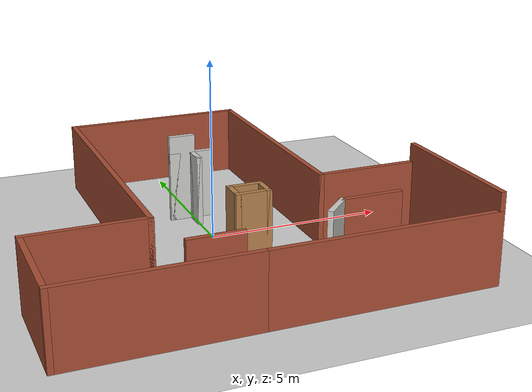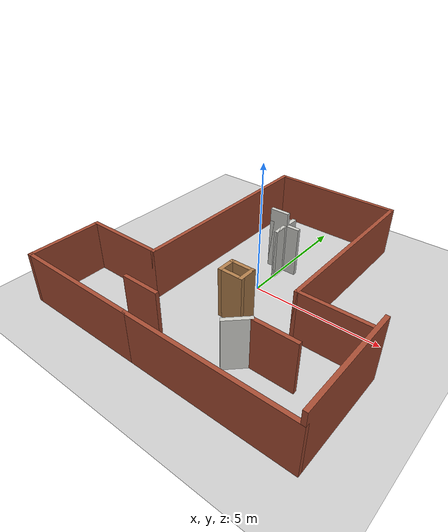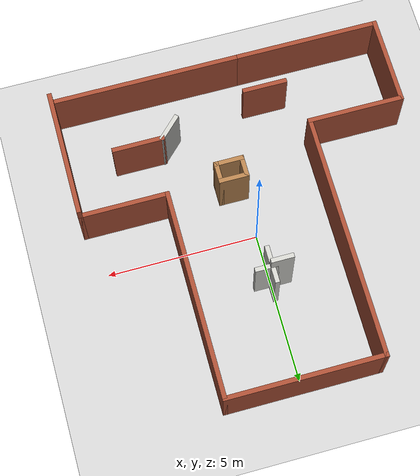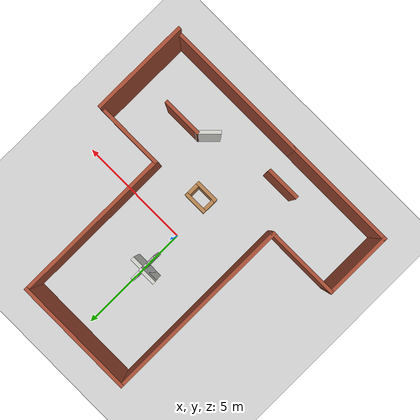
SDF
<sdf version="1.6">
 <world name="default">
  <light name="sun" type="directional">
   <pose>0 0 10 0 -0 0</pose>
   <diffuse>0.8 0.8 0.8 1</diffuse>
   <specular>0.2 0.2 0.2 1</specular>
   <attenuation>
    <range>1000</range>
    <constant>0.9</constant>
    <linear>0.01</linear>
    <quadratic>0.001</quadratic>
   </attenuation>
   <direction>-0.5 0.1 -0.9</direction>
  </light>
  <model name="ground_plane">
   <static>1</static>
   <link name="link">
    <collision name="collision">
     <geometry><plane><normal>0 0 1</normal><size>100 100</size></plane></geometry>
     <surface>
      <contact><collide_bitmask>65535</collide_bitmask></contact>
      <friction><ode><mu>100</mu><mu2>50</mu2></ode></friction>
     </surface>
    </collision>
    <visual name="visual">
     <cast_shadows>0</cast_shadows>
     <geometry><plane><normal>0 0 1</normal><size>100 100</size></plane></geometry>
     <material>
      <script><uri>file://media/materials/scripts/gazebo.material</uri><name>Gazebo/Grey</name></script>
     </material>
    </visual>
   </link>
  </model>
  <gravity>0 0 -9.8</gravity>
  <magnetic_field>6e-06 2.3e-05 -4.2e-05</magnetic_field>
  <atmosphere type="adiabatic"/>
  <physics name="default_physics" default="0" type="ode">
   <max_step_size>0.001</max_step_size>
   <real_time_factor>1</real_time_factor>
   <real_time_update_rate>1000</real_time_update_rate>
  </physics>
  <scene><ambient>0.4 0.4 0.4 1</ambient><background>0.7 0.7 0.7 1</background><shadows>1</shadows></scene>
  <audio><device>default</device></audio>
  <spherical_coordinates>
   <surface_model>EARTH_WGS84</surface_model>
   <latitude_deg>0</latitude_deg>
   <longitude_deg>0</longitude_deg>
   <elevation>0</elevation>
   <heading_deg>0</heading_deg>
  </spherical_coordinates>
  <model name="Tshape">
   <pose>-0.127 -0.118 0 0 -0 0</pose>
   <link name="Wall_11">
    <collision name="Wall_11_Collision">
     <geometry><box><size>5 0.15 2</size></box></geometry>
     <pose>0 0 1 0 -0 0</pose>
    </collision>
    <visual name="Wall_11_Visual">
     <pose>0 0 1 0 -0 0</pose>
     <geometry><box><size>5 0.15 2</size></box></geometry>
     <material>
      <script><uri>file://media/materials/scripts/gazebo.material</uri><name>Gazebo/Bricks</name></script>
      <ambient>1 1 1 1</ambient>
     </material>
     <meta><layer>0</layer></meta>
    </visual>
    <pose>-3.1 -5.475 0 0 -0 3.14159</pose>
   </link>
   <link name="Wall_12">
    <collision name="Wall_12_Collision">
     <geometry><box><size>3 0.15 2</size></box></geometry>
     <pose>0 0 1 0 -0 0</pose>
    </collision>
    <visual name="Wall_12_Visual">
     <pose>0 0 1 0 -0 0</pose>
     <geometry><box><size>3 0.15 2</size></box></geometry>
     <material>
      <script><uri>file://media/materials/scripts/gazebo.material</uri><name>Gazebo/Bricks</name></script>
      <ambient>1 1 1 1</ambient>
     </material>
     <meta><layer>0</layer></meta>
    </visual>
    <pose>-5.525 -4.05 0 0 -0 1.5708</pose>
   </link>
   <link name="Wall_13">
    <collision name="Wall_13_Collision">
     <geometry><box><size>3.25 0.15 2</size></box></geometry>
     <pose>0 0 1 0 -0 0</pose>
    </collision>
    <visual name="Wall_13_Visual">
     <pose>0 0 1 0 -0 0</pose>
     <geometry><box><size>3.25 0.15 2</size></box></geometry>
     <material>
      <script><uri>file://media/materials/scripts/gazebo.material</uri><name>Gazebo/Bricks</name></script>
      <ambient>1 1 1 1</ambient>
     </material>
     <meta><layer>0</layer></meta>
    </visual>
    <pose>-3.975 -2.625 0 0 -0 0</pose>
   </link>
   <link name="Wall_14">
    <collision name="Wall_14_Collision">
     <geometry><box><size>8.25 0.15 2</size></box></geometry>
     <pose>0 0 1 0 -0 0</pose>
    </collision>
    <visual name="Wall_14_Visual">
     <pose>0 0 1 0 -0 0</pose>
     <geometry><box><size>8.25 0.15 2</size></box></geometry>
     <material>
      <script><uri>file://media/materials/scripts/gazebo.material</uri><name>Gazebo/Bricks</name></script>
      <ambient>1 1 1 1</ambient>
     </material>
     <meta><layer>0</layer></meta>
    </visual>
    <pose>-2.425 1.425 0 0 -0 1.5708</pose>
   </link>
   <link name="Wall_15">
    <collision name="Wall_15_Collision">
     <geometry><box><size>5.25 0.15 2</size></box></geometry>
     <pose>0 0 1 0 -0 0</pose>
    </collision>
    <visual name="Wall_15_Visual">
     <pose>0 0 1 0 -0 0</pose>
     <geometry><box><size>5.25 0.15 2</size></box></geometry>
     <material>
      <script><uri>file://media/materials/scripts/gazebo.material</uri><name>Gazebo/Bricks</name></script>
      <ambient>1 1 1 1</ambient>
     </material>
     <meta><layer>0</layer></meta>
    </visual>
    <pose>0.125 5.475 0 0 -0 0</pose>
   </link>
   <link name="Wall_16">
    <collision name="Wall_16_Collision">
     <geometry><box><size>7 0.15 2</size></box></geometry>
     <pose>0 0 1 0 -0 0</pose>
    </collision>
    <visual name="Wall_16_Visual">
     <pose>0 0 1 0 -0 0</pose>
     <geometry><box><size>7 0.15 2</size></box></geometry>
     <material>
      <script><uri>file://media/materials/scripts/gazebo.material</uri><name>Gazebo/Bricks</name></script>
      <ambient>1 1 1 1</ambient>
     </material>
     <meta><layer>0</layer></meta>
    </visual>
    <pose>2.675 2.05 0 0 -0 -1.5708</pose>
   </link>
   <link name="Wall_17">
    <collision name="Wall_17_Collision">
     <geometry><box><size>3 0.15 2</size></box></geometry>
     <pose>0 0 1 0 -0 0</pose>
    </collision>
    <visual name="Wall_17_Visual">
     <pose>0 0 1 0 -0 0</pose>
     <geometry><box><size>3 0.15 2</size></box></geometry>
     <material>
      <script><uri>file://media/materials/scripts/gazebo.material</uri><name>Gazebo/Bricks</name></script>
      <ambient>1 1 1 1</ambient>
     </material>
     <meta><layer>0</layer></meta>
    </visual>
    <pose>4.1 -1.375 0 0 -0 0</pose>
   </link>
   <link name="Wall_18">
    <collision name="Wall_18_Collision">
     <geometry><box><size>4.25 0.15 2.5</size></box></geometry>
     <pose>0 0 1.25 0 -0 0</pose>
    </collision>
    <visual name="Wall_18_Visual">
     <pose>0 0 1.25 0 -0 0</pose>
     <geometry><box><size>4.25 0.15 2.5</size></box></geometry>
     <material>
      <script><uri>file://media/materials/scripts/gazebo.material</uri><name>Gazebo/Bricks</name></script>
      <ambient>1 1 1 1</ambient>
     </material>
     <meta><layer>0</layer></meta>
    </visual>
    <pose>5.525 -3.425 0 0 -0 -1.5708</pose>
   </link>
   <link name="Wall_19">
    <collision name="Wall_19_Collision">
     <geometry><box><size>6.35 0.15 2</size></box></geometry>
     <pose>0 0 1 0 -0 0</pose>
    </collision>
    <visual name="Wall_19_Visual">
     <pose>0 0 1 0 -0 0</pose>
     <geometry><box><size>6.35 0.15 2</size></box></geometry>
     <material>
      <script><uri>file://media/materials/scripts/gazebo.material</uri><name>Gazebo/Bricks</name></script>
      <ambient>1 1 1 1</ambient>
     </material>
     <meta><layer>0</layer></meta>
    </visual>
    <pose>2.425 -5.475 0 0 -0 3.14159</pose>
   </link>
   <link name="Wall_21">
    <collision name="Wall_21_Collision">
     <geometry><box><size>1.75 0.15 2</size></box></geometry>
     <pose>0 0 1 0 -0 0</pose>
    </collision>
    <visual name="Wall_21_Visual">
     <pose>0 0 1 0 -0 0</pose>
     <geometry><box><size>1.75 0.15 2</size></box></geometry>
     <material>
      <script><uri>file://media/materials/scripts/gazebo.material</uri><name>Gazebo/Bricks</name></script>
      <ambient>1 1 1 1</ambient>
     </material>
     <meta><layer>0</layer></meta>
    </visual>
    <pose>3.154 -3.293 0 0 -0 3.14159</pose>
   </link>
   <link name="Wall_22">
    <collision name="Wall_22_Collision">
     <geometry><box><size>1 0.15 2</size></box></geometry>
     <pose>0 0 1 0 -0 0</pose>
    </collision>
    <visual name="Wall_22_Visual">
     <pose>0 0 1 0 -0 0</pose>
     <geometry><box><size>1 0.15 2</size></box></geometry>
     <material>
      <script><uri>file://media/materials/scripts/gazebo.material</uri><name>Gazebo/CeilingTiled</name></script>
      <ambient>1 1 1 1</ambient>
     </material>
     <meta><layer>0</layer></meta>
    </visual>
    <pose>2.0535 -3.5935 0 0 -0 -2.35619</pose>
   </link>
   <link name="Wall_24">
    <collision name="Wall_24_Collision">
     <geometry><box><size>1.25 0.15 2</size></box></geometry>
     <pose>0 0 1 0 -0 0</pose>
    </collision>
    <visual name="Wall_24_Visual">
     <pose>0 0 1 0 -0 0</pose>
     <geometry><box><size>1.25 0.15 2</size></box></geometry>
     <material>
      <script><uri>file://media/materials/scripts/gazebo.material</uri><name>Gazebo/CeilingTiled</name></script>
      <ambient>1 1 1 1</ambient>
     </material>
     <meta><layer>0</layer></meta>
    </visual>
    <pose>0.124 1.769 0 0 -0 -1.5708</pose>
   </link>
   <link name="Wall_25">
    <collision name="Wall_25_Collision">
     <geometry><box><size>0.75 0.15 2</size></box></geometry>
     <pose>0 0 1 0 -0 0</pose>
    </collision>
    <visual name="Wall_25_Visual">
     <pose>0 0 1 0 -0 0</pose>
     <geometry><box><size>0.75 0.15 2</size></box></geometry>
     <material>
      <script><uri>file://media/materials/scripts/gazebo.material</uri><name>Gazebo/CeilingTiled</name></script>
      <ambient>1 1 1 1</ambient>
     </material>
     <meta><layer>0</layer></meta>
    </visual>
    <pose>0.124 1.519 0 0 -0 1.5708</pose>
   </link>
   <link name="Wall_26">
    <collision name="Wall_26_Collision">
     <geometry><box><size>0.75 0.15 2.5</size></box></geometry>
     <pose>0 0 1.25 0 -0 0</pose>
    </collision>
    <visual name="Wall_26_Visual">
     <pose>0 0 1.25 0 -0 0</pose>
     <geometry><box><size>0.75 0.15 2.5</size></box></geometry>
     <material>
      <script><uri>file://media/materials/scripts/gazebo.material</uri><name>Gazebo/CeilingTiled</name></script>
      <ambient>1 1 1 1</ambient>
     </material>
     <meta><layer>0</layer></meta>
    </visual>
    <pose>-0.176 1.819 0 0 -0 3.14159</pose>
   </link>
   <link name="Wall_27">
    <collision name="Wall_27_Collision">
     <geometry><box><size>1.25 0.15 2</size></box></geometry>
     <pose>0 0 1 0 -0 0</pose>
    </collision>
    <visual name="Wall_27_Visual">
     <pose>0 0 1 0 -0 0</pose>
     <geometry><box><size>1.25 0.15 2</size></box></geometry>
     <material>
      <script><uri>file://media/materials/scripts/gazebo.material</uri><name>Gazebo/CeilingTiled</name></script>
      <ambient>1 1 1 1</ambient>
     </material>
     <meta><layer>0</layer></meta>
    </visual>
    <pose>0.074 1.819 0 0 -0 0</pose>
   </link>
   <link name="Wall_29">
    <collision name="Wall_29_Collision">
     <geometry><box><size>1 0.15 2</size></box></geometry>
     <pose>0 0 1 0 -0 0</pose>
    </collision>
    <visual name="Wall_29_Visual">
     <pose>0 0 1 0 -0 0</pose>
     <geometry><box><size>1 0.15 2</size></box></geometry>
     <material>
      <script><uri>file://media/materials/scripts/gazebo.material</uri><name>Gazebo/Wood</name></script>
      <ambient>1 1 1 1</ambient>
     </material>
     <meta><layer>0</layer></meta>
    </visual>
    <pose>0.496 -1.352 0 0 -0 0</pose>
   </link>
   <link name="Wall_30">
    <collision name="Wall_30_Collision">
     <geometry><box><size>0.75 0.15 2</size></box></geometry>
     <pose>0 0 1 0 -0 0</pose>
    </collision>
    <visual name="Wall_30_Visual">
     <pose>0 0 1 0 -0 0</pose>
     <geometry><box><size>0.75 0.15 2</size></box></geometry>
     <material>
      <script><uri>file://media/materials/scripts/gazebo.material</uri><name>Gazebo/Wood</name></script>
      <ambient>1 1 1 1</ambient>
     </material>
     <meta><layer>0</layer></meta>
    </visual>
    <pose>0.921 -1.652 0 0 -0 -1.5708</pose>
   </link>
   <link name="Wall_31">
    <collision name="Wall_31_Collision">
     <geometry><box><size>1 0.15 2</size></box></geometry>
     <pose>0 0 1 0 -0 0</pose>
    </collision>
    <visual name="Wall_31_Visual">
     <pose>0 0 1 0 -0 0</pose>
     <geometry><box><size>1 0.15 2</size></box></geometry>
     <material>
      <script><uri>file://media/materials/scripts/gazebo.material</uri><name>Gazebo/Wood</name></script>
      <ambient>1 1 1 1</ambient>
     </material>
     <meta><layer>0</layer></meta>
    </visual>
    <pose>0.496 -1.952 0 0 -0 3.14159</pose>
   </link>
   <link name="Wall_32">
    <collision name="Wall_32_Collision">
     <geometry><box><size>0.75 0.15 2</size></box></geometry>
     <pose>0 0 1 0 -0 0</pose>
    </collision>
    <visual name="Wall_32_Visual">
     <pose>0 0 1 0 -0 0</pose>
     <geometry><box><size>0.75 0.15 2</size></box></geometry>
     <material>
      <script><uri>file://media/materials/scripts/gazebo.material</uri><name>Gazebo/Wood</name></script>
      <ambient>1 1 1 1</ambient>
     </material>
     <meta><layer>0</layer></meta>
    </visual>
    <pose>0.071 -1.652 0 0 -0 1.5708</pose>
   </link>
   <link name="Wall_5">
    <collision name="Wall_5_Collision">
     <geometry><box><size>1.5 0.15 2</size></box></geometry>
     <pose>0 0 1 0 -0 0</pose>
    </collision>
    <visual name="Wall_5_Visual">
     <pose>0 0 1 0 -0 0</pose>
     <geometry><box><size>1.5 0.15 2</size></box></geometry>
     <material>
      <script><uri>file://media/materials/scripts/gazebo.material</uri><name>Gazebo/Bricks</name></script>
      <ambient>1 1 1 1</ambient>
     </material>
     <meta><layer>0</layer></meta>
    </visual>
    <pose>-1.348 -4.222 0 0 -0 3.14159</pose>
   </link>
   <static>1</static>
  </model>
 </world>
</sdf>
